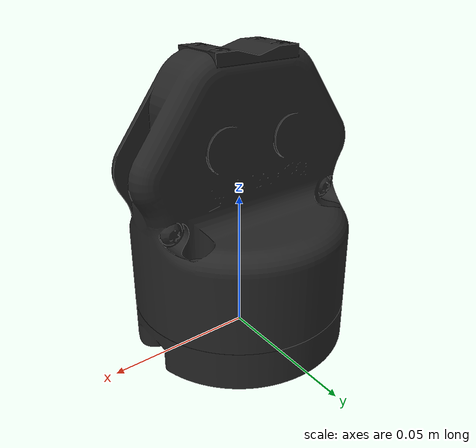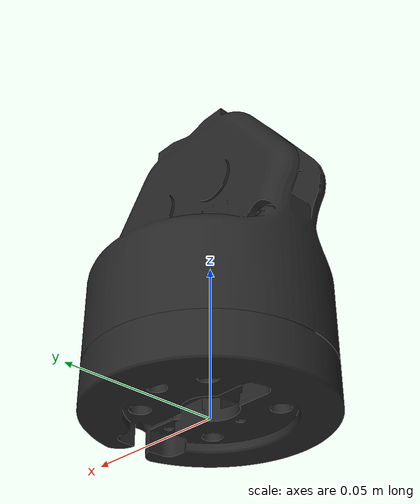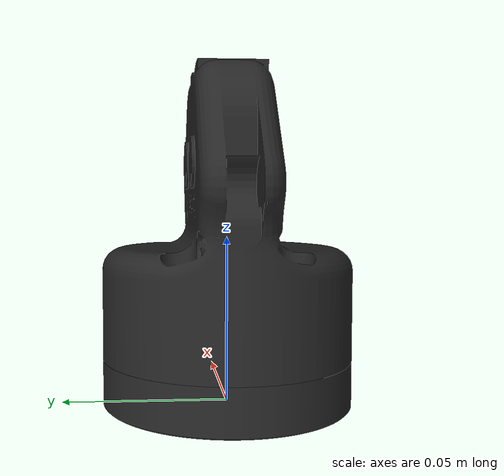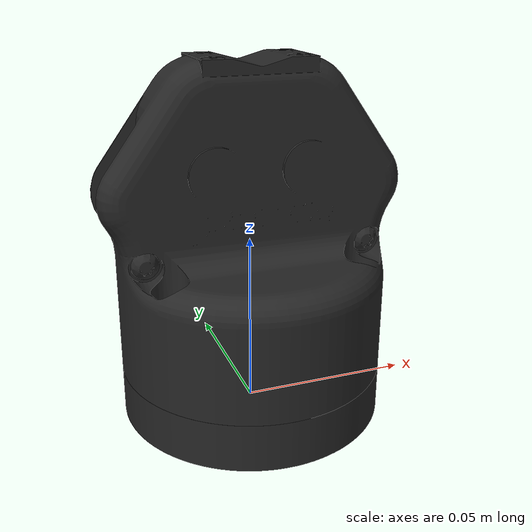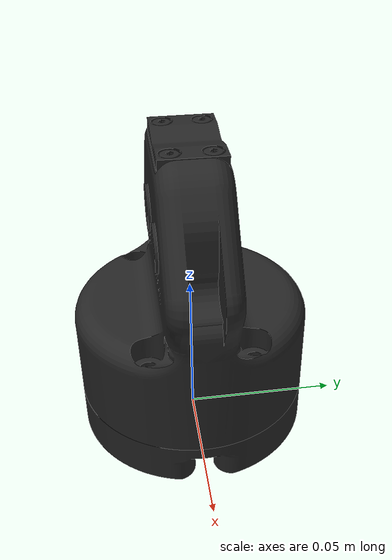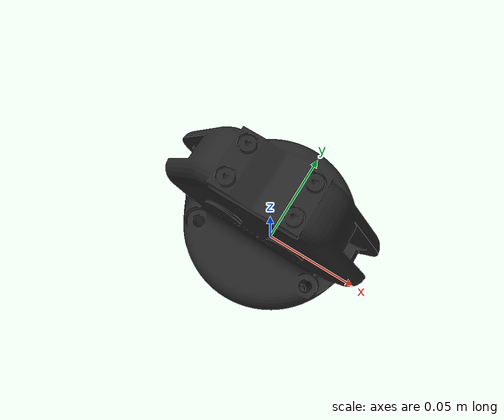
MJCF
<mujoco model="MuJoCo Model">
  <compiler angle="radian"/>

  <default>
    <mesh scale="0.001 0.001 0.001"/>
  </default>

  <asset>
    <material name="black" rgba="0.149 0.149 0.149 1"/>
    <mesh name="base_mount" file="../assets/base_mount.stl" scale="1 1 1"/>
    <mesh name="base" file="../assets/base.stl" scale="1 1 1"/>
  </asset>

  <worldbody>
    <body name="base_mount" pos="0 0 0.007">
      <geom type="mesh" contype="0" conaffinity="0" group="2" material="black" mesh="base_mount"/>
      <geom type="mesh" group="3" mesh="base_mount"/>
      <body name="base" pos="0 0 0.0038" quat="0.707107 0 0 -0.707107">
        <geom type="mesh" contype="0" conaffinity="0" group="2" material="black" mesh="base"/>
        <geom type="mesh" group="3" mesh="base"/>
        <site name="pinch" pos="0 0 0.145" group="5" rgba="0.9 0.9 0.9 1"/>
      </body>
    </body>
  </worldbody>
</mujoco>
